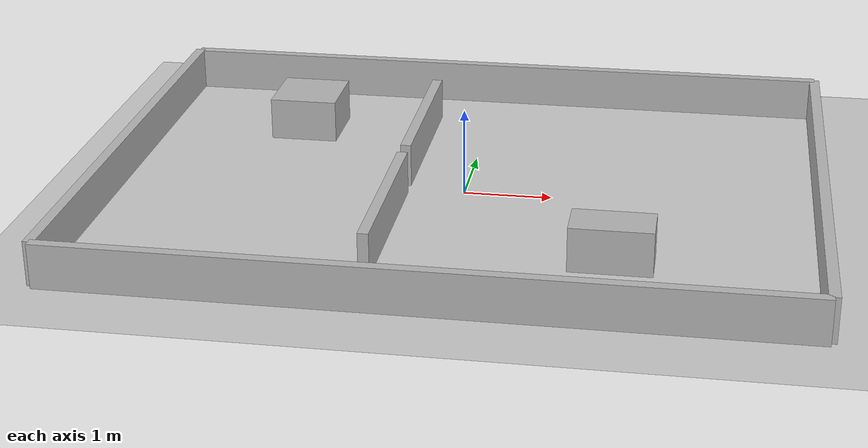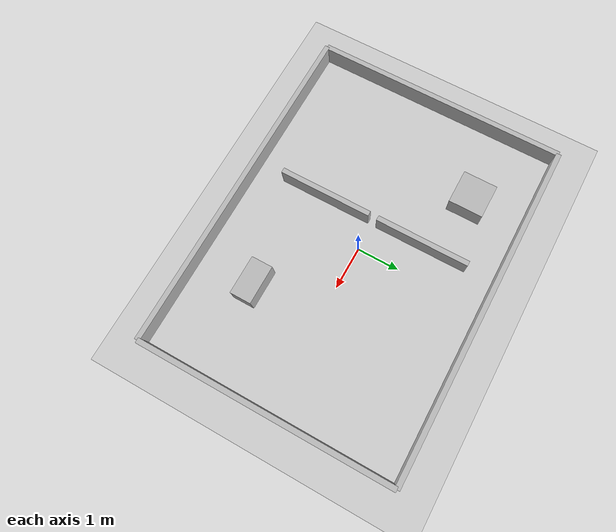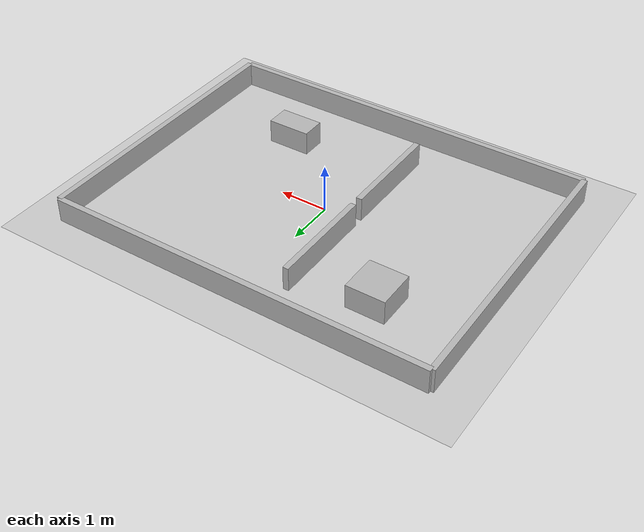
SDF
<?xml version="1.0"?>
<sdf version="1.6">
  <world name="default">
    <include>
      <uri>model://ground_plane</uri>
    </include>
    <include>
      <uri>model://sun</uri>
    </include>
    <scene>
      <shadows>false</shadows>
    </scene>
    <gui fullscreen="0">
      <camera name="user_camera">
        <pose frame="">0 0 12 0 1.5708 0</pose>
        <view_controller>orbit</view_controller>
        <projection_type>perspective</projection_type>
      </camera>
    </gui>
    <physics type="ode">
      <real_time_update_rate>1000.0</real_time_update_rate>
      <max_step_size>0.001</max_step_size>
      <real_time_factor>1</real_time_factor>
    </physics>

    <model name="outer_north_wall">
      <static>true</static>
      <pose>0 3 0.25 0 0 0</pose>
      <link name="link">
        <collision name="collision"><geometry><box><size>8 0.12 0.5</size></box></geometry></collision>
        <visual name="visual"><geometry><box><size>8 0.12 0.5</size></box></geometry></visual>
      </link>
    </model>
    <model name="outer_south_wall">
      <static>true</static>
      <pose>0 -3 0.25 0 0 0</pose>
      <link name="link">
        <collision name="collision"><geometry><box><size>8 0.12 0.5</size></box></geometry></collision>
        <visual name="visual"><geometry><box><size>8 0.12 0.5</size></box></geometry></visual>
      </link>
    </model>
    <model name="outer_west_wall">
      <static>true</static>
      <pose>-4 0 0.25 0 0 0</pose>
      <link name="link">
        <collision name="collision"><geometry><box><size>0.12 6 0.5</size></box></geometry></collision>
        <visual name="visual"><geometry><box><size>0.12 6 0.5</size></box></geometry></visual>
      </link>
    </model>
    <model name="outer_east_wall">
      <static>true</static>
      <pose>4 0 0.25 0 0 0</pose>
      <link name="link">
        <collision name="collision"><geometry><box><size>0.12 6 0.5</size></box></geometry></collision>
        <visual name="visual"><geometry><box><size>0.12 6 0.5</size></box></geometry></visual>
      </link>
    </model>

    <model name="room_divider_left">
      <static>true</static>
      <pose>-0.7 1.2 0.25 0 0 0</pose>
      <link name="link">
        <collision name="collision"><geometry><box><size>0.12 2.2 0.5</size></box></geometry></collision>
        <visual name="visual"><geometry><box><size>0.12 2.2 0.5</size></box></geometry></visual>
      </link>
    </model>
    <model name="room_divider_right">
      <static>true</static>
      <pose>-0.7 -1.2 0.25 0 0 0</pose>
      <link name="link">
        <collision name="collision"><geometry><box><size>0.12 2.2 0.5</size></box></geometry></collision>
        <visual name="visual"><geometry><box><size>0.12 2.2 0.5</size></box></geometry></visual>
      </link>
    </model>
    <model name="upper_room_table">
      <static>true</static>
      <pose>-2.2 1.7 0.25 0 0 0</pose>
      <link name="link">
        <collision name="collision"><geometry><box><size>0.8 0.8 0.5</size></box></geometry></collision>
        <visual name="visual"><geometry><box><size>0.8 0.8 0.5</size></box></geometry></visual>
      </link>
    </model>
    <model name="lower_room_table">
      <static>true</static>
      <pose>1.8 -1.6 0.25 0 0 0</pose>
      <link name="link">
        <collision name="collision"><geometry><box><size>0.9 0.5 0.5</size></box></geometry></collision>
        <visual name="visual"><geometry><box><size>0.9 0.5 0.5</size></box></geometry></visual>
      </link>
    </model>
  </world>
</sdf>
